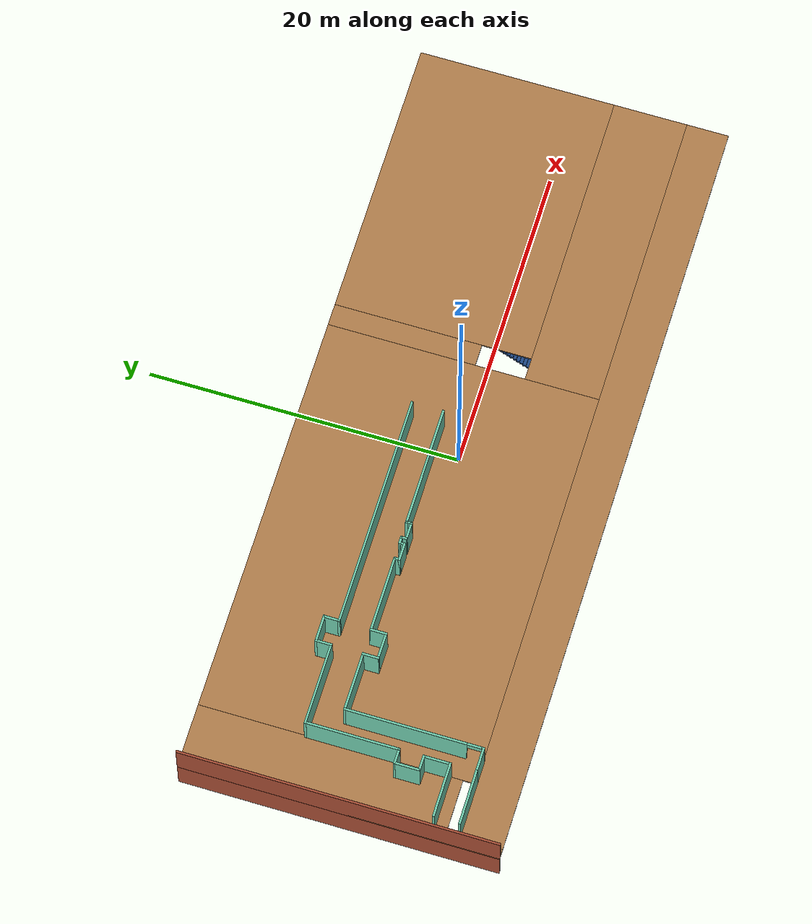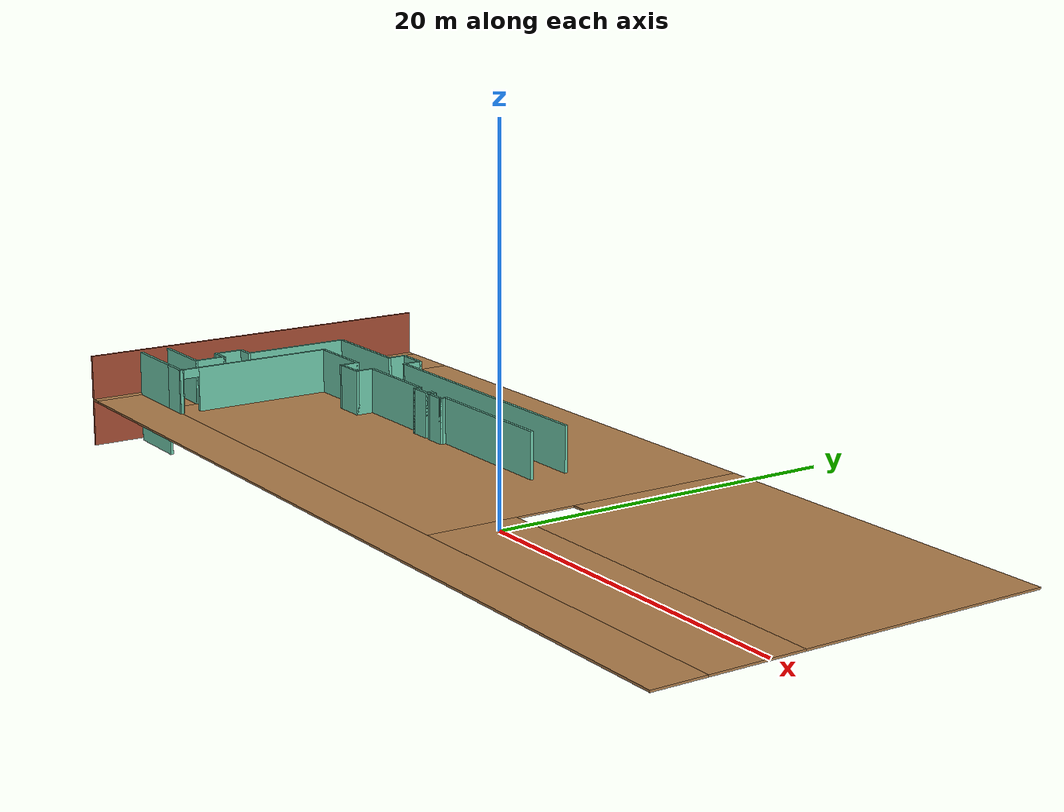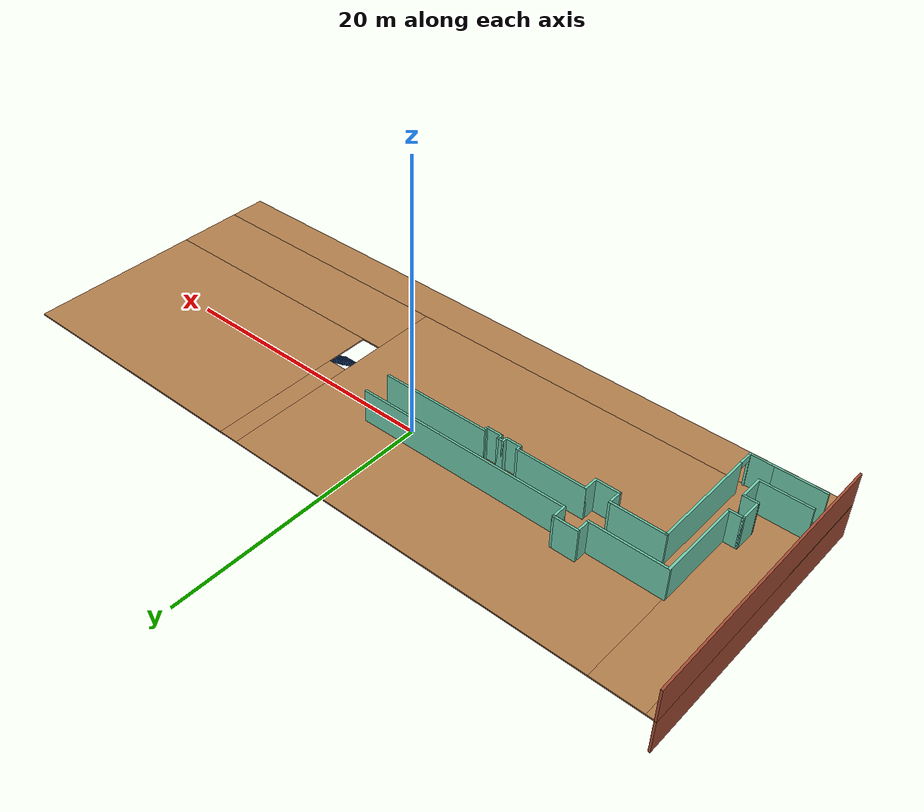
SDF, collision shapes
<sdf version="1.7">
 <model name="Version_precise_map_gazebo">
  <link name="Floor_1">
   <pose>0 0 2.5 0 -0 0</pose>
   <visual name="Floor_1_Visual_0">
    <pose>-24.7594 0 0.05 0 -0 0</pose>
    <geometry><box><size>0.631175 20.15 0.1</size></box></geometry>
    <material>
     <script><uri>file://media/materials/scripts/gazebo.material</uri><name>Gazebo/Wood</name></script>
     <ambient>1 1 1 1</ambient>
    </material>
    <meta><layer>1</layer></meta>
   </visual>
   <collision name="Floor_1_Collision_0">
    <geometry><box><size>0.631175 20.15 0.1</size></box></geometry>
    <pose>-24.7594 0 0.05 0 -0 0</pose>
   </collision>
   <visual name="Floor_1_Visual_1">
    <pose>0.315588 -8.71984 0.05 0 -0 0</pose>
    <geometry><box><size>49.5188 2.71032 0.1</size></box></geometry>
    <material>
     <script><uri>file://media/materials/scripts/gazebo.material</uri><name>Gazebo/Wood</name></script>
     <ambient>1 1 1 1</ambient>
    </material>
    <meta><layer>1</layer></meta>
   </visual>
   <collision name="Floor_1_Collision_1">
    <geometry><box><size>49.5188 2.71032 0.1</size></box></geometry>
    <pose>0.315588 -8.71984 0.05 0 -0 0</pose>
   </collision>
   <visual name="Floor_1_Visual_2">
    <pose>-6.8976 1.35516 0.05 0 -0 0</pose>
    <geometry><box><size>28.0924 17.4397 0.1</size></box></geometry>
    <material>
     <script><uri>file://media/materials/scripts/gazebo.material</uri><name>Gazebo/Wood</name></script>
     <ambient>1 1 1 1</ambient>
    </material>
    <meta><layer>1</layer></meta>
   </visual>
   <collision name="Floor_1_Collision_2">
    <geometry><box><size>26.2924 17.4397 0.1</size></box></geometry>
    <pose>-7.7976 1.35516 0.05 0 -0 0</pose>
   </collision>
   <visual name="Floor_1_Visual_3">
    <pose>16.1118 -4.98908 0.05 0 -0 0</pose>
    <geometry><box><size>17.9264 4.7512 0.1</size></box></geometry>
    <material>
     <script><uri>file://media/materials/scripts/gazebo.material</uri><name>Gazebo/Wood</name></script>
     <ambient>1 1 1 1</ambient>
    </material>
    <meta><layer>1</layer></meta>
   </visual>
   <collision name="Floor_1_Collision_3">
    <geometry><box><size>19.7264 4.7512 0.1</size></box></geometry>
    <pose>15.2118 -4.98908 0.05 0 -0 0</pose>
   </collision>
   <visual name="Floor_1_Visual_4">
    <pose>-22.6938 1.76016 0.05 0 -0 0</pose>
    <geometry><box><size>3.5 16.6297 0.1</size></box></geometry>
    <material>
     <script><uri>file://media/materials/scripts/gazebo.material</uri><name>Gazebo/Wood</name></script>
     <ambient>1 1 1 1</ambient>
    </material>
    <meta><layer>1</layer></meta>
   </visual>
   <collision name="Floor_1_Collision_4">
    <geometry><box><size>3.5 16.6297 0.1</size></box></geometry>
    <pose>-22.6938 1.76016 0.05 0 -0 0</pose>
   </collision>
   <visual name="Floor_1_Visual_5">
    <pose>16.8238 3.73076 0.05 0 -0 0</pose>
    <geometry><box><size>16.5025 12.6885 0.1</size></box></geometry>
    <material>
     <script><uri>file://media/materials/scripts/gazebo.material</uri><name>Gazebo/Wood</name></script>
     <ambient>1 1 1 1</ambient>
    </material>
    <meta><layer>1</layer></meta>
   </visual>
   <collision name="Floor_1_Collision_5">
    <geometry><box><size>18.3025 12.6885 0.1</size></box></geometry>
    <pose>15.9238 3.73076 0.05 0 -0 0</pose>
   </collision>
   <visual name="Floor_1_Visual_6">
    <pose>7.86056 5.3225 0.05 0 -0 0</pose>
    <geometry><box><size>1.42389 9.505 0.1</size></box></geometry>
    <material>
     <script><uri>file://media/materials/scripts/gazebo.material</uri><name>Gazebo/Wood</name></script>
     <ambient>1 1 1 1</ambient>
    </material>
    <meta><layer>1</layer></meta>
   </visual>
   <collision name="Floor_1_Collision_6">
    <geometry><box><size>1.42389 9.505 0.1</size></box></geometry>
    <pose>6.06056 5.3225 0.05 0 -0 0</pose>
   </collision>
  </link>
  <link name="Stairs_0">
   <visual name="Stairs_0_Visual_0">
    <pose>7.86056 -2.50736 0.083333 0 -0 -3.14159</pose>
    <geometry><box><size>1.42389 0.212232 0.166667</size></box></geometry>
    <material>
     <script><uri>file://media/materials/scripts/gazebo.material</uri><name>Gazebo/Grey</name></script>
     <ambient>0.12549 0.290196 0.529412 1</ambient>
    </material>
    <meta><layer>0</layer></meta>
   </visual>
   <collision name="Stairs_0_Collision_0">
    <geometry><box><size>1.42389 0.212232 0.166667</size></box></geometry>
    <pose>7.86056 -2.50736 0.083333 0 -0 -3.14159</pose>
   </collision>
   <visual name="Stairs_0_Visual_1">
    <pose>7.86056 -2.29513 0.25 0 -0 -3.14159</pose>
    <geometry><box><size>1.42389 0.212232 0.166667</size></box></geometry>
    <material>
     <script><uri>file://media/materials/scripts/gazebo.material</uri><name>Gazebo/Grey</name></script>
     <ambient>0.12549 0.290196 0.529412 1</ambient>
    </material>
    <meta><layer>0</layer></meta>
   </visual>
   <collision name="Stairs_0_Collision_1">
    <geometry><box><size>1.42389 0.212232 0.166667</size></box></geometry>
    <pose>7.86056 -2.29513 0.25 0 -0 -3.14159</pose>
   </collision>
   <visual name="Stairs_0_Visual_2">
    <pose>7.86056 -2.0829 0.416667 0 -0 -3.14159</pose>
    <geometry><box><size>1.42389 0.212232 0.166667</size></box></geometry>
    <material>
     <script><uri>file://media/materials/scripts/gazebo.material</uri><name>Gazebo/Grey</name></script>
     <ambient>0.12549 0.290196 0.529412 1</ambient>
    </material>
    <meta><layer>0</layer></meta>
   </visual>
   <collision name="Stairs_0_Collision_2">
    <geometry><box><size>1.42389 0.212232 0.166667</size></box></geometry>
    <pose>7.86056 -2.0829 0.416667 0 -0 -3.14159</pose>
   </collision>
   <visual name="Stairs_0_Visual_3">
    <pose>7.86056 -1.87067 0.583333 0 -0 -3.14159</pose>
    <geometry><box><size>1.42389 0.212232 0.166667</size></box></geometry>
    <material>
     <script><uri>file://media/materials/scripts/gazebo.material</uri><name>Gazebo/Grey</name></script>
     <ambient>0.12549 0.290196 0.529412 1</ambient>
    </material>
    <meta><layer>0</layer></meta>
   </visual>
   <collision name="Stairs_0_Collision_3">
    <geometry><box><size>1.42389 0.212232 0.166667</size></box></geometry>
    <pose>7.86056 -1.87067 0.583333 0 -0 -3.14159</pose>
   </collision>
   <visual name="Stairs_0_Visual_4">
    <pose>7.86056 -1.65844 0.75 0 -0 -3.14159</pose>
    <geometry><box><size>1.42389 0.212232 0.166667</size></box></geometry>
    <material>
     <script><uri>file://media/materials/scripts/gazebo.material</uri><name>Gazebo/Grey</name></script>
     <ambient>0.12549 0.290196 0.529412 1</ambient>
    </material>
    <meta><layer>0</layer></meta>
   </visual>
   <collision name="Stairs_0_Collision_4">
    <geometry><box><size>1.42389 0.212232 0.166667</size></box></geometry>
    <pose>7.86056 -1.65844 0.75 0 -0 -3.14159</pose>
   </collision>
   <visual name="Stairs_0_Visual_5">
    <pose>7.86056 -1.4462 0.916667 0 -0 -3.14159</pose>
    <geometry><box><size>1.42389 0.212232 0.166667</size></box></geometry>
    <material>
     <script><uri>file://media/materials/scripts/gazebo.material</uri><name>Gazebo/Grey</name></script>
     <ambient>0.12549 0.290196 0.529412 1</ambient>
    </material>
    <meta><layer>0</layer></meta>
   </visual>
   <collision name="Stairs_0_Collision_5">
    <geometry><box><size>1.42389 0.212232 0.166667</size></box></geometry>
    <pose>7.86056 -1.4462 0.916667 0 -0 -3.14159</pose>
   </collision>
   <visual name="Stairs_0_Visual_6">
    <pose>7.86056 -1.23397 1.08333 0 -0 -3.14159</pose>
    <geometry><box><size>1.42389 0.212232 0.166667</size></box></geometry>
    <material>
     <script><uri>file://media/materials/scripts/gazebo.material</uri><name>Gazebo/Grey</name></script>
     <ambient>0.12549 0.290196 0.529412 1</ambient>
    </material>
    <meta><layer>0</layer></meta>
   </visual>
   <collision name="Stairs_0_Collision_6">
    <geometry><box><size>1.42389 0.212232 0.166667</size></box></geometry>
    <pose>7.86056 -1.23397 1.08333 0 -0 -3.14159</pose>
   </collision>
   <visual name="Stairs_0_Visual_7">
    <pose>7.86056 -1.02174 1.25 0 -0 -3.14159</pose>
    <geometry><box><size>1.42389 0.212232 0.166667</size></box></geometry>
    <material>
     <script><uri>file://media/materials/scripts/gazebo.material</uri><name>Gazebo/Grey</name></script>
     <ambient>0.12549 0.290196 0.529412 1</ambient>
    </material>
    <meta><layer>0</layer></meta>
   </visual>
   <collision name="Stairs_0_Collision_7">
    <geometry><box><size>1.42389 0.212232 0.166667</size></box></geometry>
    <pose>7.86056 -1.02174 1.25 0 -0 -3.14159</pose>
   </collision>
   <visual name="Stairs_0_Visual_8">
    <pose>7.86056 -0.809507 1.41667 0 -0 -3.14159</pose>
    <geometry><box><size>1.42389 0.212232 0.166667</size></box></geometry>
    <material>
     <script><uri>file://media/materials/scripts/gazebo.material</uri><name>Gazebo/Grey</name></script>
     <ambient>0.12549 0.290196 0.529412 1</ambient>
    </material>
    <meta><layer>0</layer></meta>
   </visual>
   <collision name="Stairs_0_Collision_8">
    <geometry><box><size>1.42389 0.212232 0.166667</size></box></geometry>
    <pose>7.86056 -0.809507 1.41667 0 -0 -3.14159</pose>
   </collision>
   <visual name="Stairs_0_Visual_9">
    <pose>7.86056 -0.597275 1.58333 0 -0 -3.14159</pose>
    <geometry><box><size>1.42389 0.212232 0.166667</size></box></geometry>
    <material>
     <script><uri>file://media/materials/scripts/gazebo.material</uri><name>Gazebo/Grey</name></script>
     <ambient>0.12549 0.290196 0.529412 1</ambient>
    </material>
    <meta><layer>0</layer></meta>
   </visual>
   <collision name="Stairs_0_Collision_9">
    <geometry><box><size>1.42389 0.212232 0.166667</size></box></geometry>
    <pose>7.86056 -0.597275 1.58333 0 -0 -3.14159</pose>
   </collision>
   <visual name="Stairs_0_Visual_10">
    <pose>7.86056 -0.385043 1.75 0 -0 -3.14159</pose>
    <geometry><box><size>1.42389 0.212232 0.166667</size></box></geometry>
    <material>
     <script><uri>file://media/materials/scripts/gazebo.material</uri><name>Gazebo/Grey</name></script>
     <ambient>0.12549 0.290196 0.529412 1</ambient>
    </material>
    <meta><layer>0</layer></meta>
   </visual>
   <collision name="Stairs_0_Collision_10">
    <geometry><box><size>1.42389 0.212232 0.166667</size></box></geometry>
    <pose>7.86056 -0.385043 1.75 0 -0 -3.14159</pose>
   </collision>
   <visual name="Stairs_0_Visual_11">
    <pose>7.86056 -0.172812 1.91667 0 -0 -3.14159</pose>
    <geometry><box><size>1.42389 0.212232 0.166667</size></box></geometry>
    <material>
     <script><uri>file://media/materials/scripts/gazebo.material</uri><name>Gazebo/Grey</name></script>
     <ambient>0.12549 0.290196 0.529412 1</ambient>
    </material>
    <meta><layer>0</layer></meta>
   </visual>
   <collision name="Stairs_0_Collision_11">
    <geometry><box><size>1.42389 0.212232 0.166667</size></box></geometry>
    <pose>7.86056 -0.172812 1.91667 0 -0 -3.14159</pose>
   </collision>
   <visual name="Stairs_0_Visual_12">
    <pose>7.86056 0.03942 2.08333 0 -0 -3.14159</pose>
    <geometry><box><size>1.42389 0.212232 0.166667</size></box></geometry>
    <material>
     <script><uri>file://media/materials/scripts/gazebo.material</uri><name>Gazebo/Grey</name></script>
     <ambient>0.12549 0.290196 0.529412 1</ambient>
    </material>
    <meta><layer>0</layer></meta>
   </visual>
   <collision name="Stairs_0_Collision_12">
    <geometry><box><size>1.42389 0.212232 0.166667</size></box></geometry>
    <pose>7.86056 0.03942 2.08333 0 -0 -3.14159</pose>
   </collision>
   <visual name="Stairs_0_Visual_13">
    <pose>7.86056 0.251652 2.25 0 -0 -3.14159</pose>
    <geometry><box><size>1.42389 0.212232 0.166667</size></box></geometry>
    <material>
     <script><uri>file://media/materials/scripts/gazebo.material</uri><name>Gazebo/Grey</name></script>
     <ambient>0.12549 0.290196 0.529412 1</ambient>
    </material>
    <meta><layer>0</layer></meta>
   </visual>
   <collision name="Stairs_0_Collision_13">
    <geometry><box><size>1.42389 0.212232 0.166667</size></box></geometry>
    <pose>7.86056 0.251652 2.25 0 -0 -3.14159</pose>
   </collision>
   <visual name="Stairs_0_Visual_14">
    <pose>7.86056 0.463884 2.41667 0 -0 -3.14159</pose>
    <geometry><box><size>1.42389 0.212232 0.166667</size></box></geometry>
    <material>
     <script><uri>file://media/materials/scripts/gazebo.material</uri><name>Gazebo/Grey</name></script>
     <ambient>0.12549 0.290196 0.529412 1</ambient>
    </material>
    <meta><layer>0</layer></meta>
   </visual>
   <collision name="Stairs_0_Collision_14">
    <geometry><box><size>1.42389 0.212232 0.166667</size></box></geometry>
    <pose>7.86056 0.463884 2.41667 0 -0 -3.14159</pose>
   </collision>
  </link>
  <link name="Wall_100">
   <collision name="Wall_100_Collision">
    <geometry><box><size>0.45 0.15 2.5</size></box></geometry>
    <pose>0 0 1.25 0 -0 0</pose>
   </collision>
   <visual name="Wall_100_Visual">
    <pose>0 0 1.25 0 -0 0</pose>
    <geometry><box><size>0.45 0.15 2.5</size></box></geometry>
    <material>
     <script><uri>file://media/materials/scripts/gazebo.material</uri><name>Gazebo/Grey</name></script>
     <ambient>0.435294 0.796078 0.67451 1</ambient>
    </material>
    <meta><layer>1</layer></meta>
    <transparency>0.5</transparency>
   </visual>
   <pose>-8.27 1.125 2.5 0 -0 1.5708</pose>
  </link>
  <link name="Wall_102">
   <collision name="Wall_102_Collision">
    <geometry><box><size>1.2 0.15 2.5</size></box></geometry>
    <pose>0 0 1.25 0 -0 0</pose>
   </collision>
   <visual name="Wall_102_Visual">
    <pose>0 0 1.25 0 -0 0</pose>
    <geometry><box><size>1.2 0.15 2.5</size></box></geometry>
    <material>
     <script><uri>file://media/materials/scripts/gazebo.material</uri><name>Gazebo/Grey</name></script>
     <ambient>0.435294 0.796078 0.67451 1</ambient>
    </material>
    <meta><layer>1</layer></meta>
    <transparency>0.5</transparency>
   </visual>
   <pose>-8.795 0.975 2.5 0 -0 3.14159</pose>
  </link>
  <link name="Wall_106">
   <collision name="Wall_106_Collision">
    <geometry><box><size>0.45 0.15 2.5</size></box></geometry>
    <pose>0 0 1.25 0 -0 0</pose>
   </collision>
   <visual name="Wall_106_Visual">
    <pose>0 0 1.25 0 -0 0</pose>
    <geometry><box><size>0.45 0.15 2.5</size></box></geometry>
    <material>
     <script><uri>file://media/materials/scripts/gazebo.material</uri><name>Gazebo/Grey</name></script>
     <ambient>0.435294 0.796078 0.67451 1</ambient>
    </material>
    <meta><layer>1</layer></meta>
    <transparency>0.5</transparency>
   </visual>
   <pose>-9.32 1.125 2.5 0 -0 1.5708</pose>
  </link>
  <link name="Wall_108">
   <collision name="Wall_108_Collision">
    <geometry><box><size>5 0.15 2.5</size></box></geometry>
    <pose>0 0 1.25 0 -0 0</pose>
   </collision>
   <visual name="Wall_108_Visual">
    <pose>0 0 1.25 0 -0 0</pose>
    <geometry><box><size>5 0.15 2.5</size></box></geometry>
    <material>
     <script><uri>file://media/materials/scripts/gazebo.material</uri><name>Gazebo/Grey</name></script>
     <ambient>0.435294 0.796078 0.67451 1</ambient>
    </material>
    <meta><layer>1</layer></meta>
    <transparency>0.5</transparency>
   </visual>
   <pose>-11.745 1.275 2.5 0 -0 3.14159</pose>
  </link>
  <link name="Wall_110">
   <collision name="Wall_110_Collision">
    <geometry><box><size>1.1 0.15 2.5</size></box></geometry>
    <pose>0 0 1.25 0 -0 0</pose>
   </collision>
   <visual name="Wall_110_Visual">
    <pose>0 0 1.25 0 -0 0</pose>
    <geometry><box><size>1.1 0.15 2.5</size></box></geometry>
    <material>
     <script><uri>file://media/materials/scripts/gazebo.material</uri><name>Gazebo/Grey</name></script>
     <ambient>0.435294 0.796078 0.67451 1</ambient>
    </material>
    <meta><layer>1</layer></meta>
    <transparency>0.5</transparency>
   </visual>
   <pose>-14.17 0.8 2.5 0 -0 -1.5708</pose>
  </link>
  <link name="Wall_112">
   <collision name="Wall_112_Collision">
    <geometry><box><size>1.78 0.15 2.5</size></box></geometry>
    <pose>0 0 1.25 0 -0 0</pose>
   </collision>
   <visual name="Wall_112_Visual">
    <pose>0 0 1.25 0 -0 0</pose>
    <geometry><box><size>1.78 0.15 2.5</size></box></geometry>
    <material>
     <script><uri>file://media/materials/scripts/gazebo.material</uri><name>Gazebo/Grey</name></script>
     <ambient>0.435294 0.796078 0.67451 1</ambient>
    </material>
    <meta><layer>1</layer></meta>
    <transparency>0.5</transparency>
   </visual>
   <pose>-14.985 0.325 2.5 0 -0 3.14159</pose>
  </link>
  <link name="Wall_114">
   <collision name="Wall_114_Collision">
    <geometry><box><size>1.1 0.15 2.5</size></box></geometry>
    <pose>0 0 1.25 0 -0 0</pose>
   </collision>
   <visual name="Wall_114_Visual">
    <pose>0 0 1.25 0 -0 0</pose>
    <geometry><box><size>1.1 0.15 2.5</size></box></geometry>
    <material>
     <script><uri>file://media/materials/scripts/gazebo.material</uri><name>Gazebo/Grey</name></script>
     <ambient>0.435294 0.796078 0.67451 1</ambient>
    </material>
    <meta><layer>1</layer></meta>
    <transparency>0.5</transparency>
   </visual>
   <pose>-15.8 0.8 2.5 0 -0 1.5708</pose>
  </link>
  <link name="Wall_116">
   <collision name="Wall_116_Collision">
    <geometry><box><size>3.85 0.15 2.5</size></box></geometry>
    <pose>0 0 1.25 0 -0 0</pose>
   </collision>
   <visual name="Wall_116_Visual">
    <pose>0 0 1.25 0 -0 0</pose>
    <geometry><box><size>3.85 0.15 2.5</size></box></geometry>
    <material>
     <script><uri>file://media/materials/scripts/gazebo.material</uri><name>Gazebo/Grey</name></script>
     <ambient>0.435294 0.796078 0.67451 1</ambient>
    </material>
    <meta><layer>1</layer></meta>
    <transparency>0.5</transparency>
   </visual>
   <pose>-17.65 1.275 2.5 0 -0 3.14159</pose>
  </link>
  <link name="Wall_120">
   <collision name="Wall_120_Collision">
    <geometry><box><size>15.12 0.15 2.5</size></box></geometry>
    <pose>0 0 1.25 0 -0 0</pose>
   </collision>
   <visual name="Wall_120_Visual">
    <pose>0 0 1.25 0 -0 0</pose>
    <geometry><box><size>15.12 0.15 2.5</size></box></geometry>
    <material>
     <script><uri>file://media/materials/scripts/gazebo.material</uri><name>Gazebo/Grey</name></script>
     <ambient>0.435294 0.796078 0.67451 1</ambient>
    </material>
    <meta><layer>1</layer></meta>
    <transparency>0.5</transparency>
   </visual>
   <pose>-6.685 3.275 2.5 0 -0 3.14159</pose>
  </link>
  <link name="Wall_122">
   <collision name="Wall_122_Collision">
    <geometry><box><size>1.1 0.15 2.5</size></box></geometry>
    <pose>0 0 1.25 0 -0 0</pose>
   </collision>
   <visual name="Wall_122_Visual">
    <pose>0 0 1.25 0 -0 0</pose>
    <geometry><box><size>1.1 0.15 2.5</size></box></geometry>
    <material>
     <script><uri>file://media/materials/scripts/gazebo.material</uri><name>Gazebo/Grey</name></script>
     <ambient>0.435294 0.796078 0.67451 1</ambient>
    </material>
    <meta><layer>1</layer></meta>
    <transparency>0.5</transparency>
   </visual>
   <pose>-14.17 3.75 2.5 0 -0 1.5708</pose>
  </link>
  <link name="Wall_124">
   <collision name="Wall_124_Collision">
    <geometry><box><size>1.78 0.15 2.5</size></box></geometry>
    <pose>0 0 1.25 0 -0 0</pose>
   </collision>
   <visual name="Wall_124_Visual">
    <pose>0 0 1.25 0 -0 0</pose>
    <geometry><box><size>1.78 0.15 2.5</size></box></geometry>
    <material>
     <script><uri>file://media/materials/scripts/gazebo.material</uri><name>Gazebo/Grey</name></script>
     <ambient>0.435294 0.796078 0.67451 1</ambient>
    </material>
    <meta><layer>1</layer></meta>
    <transparency>0.5</transparency>
   </visual>
   <pose>-14.985 4.225 2.5 0 -0 3.14159</pose>
  </link>
  <link name="Wall_126">
   <collision name="Wall_126_Collision">
    <geometry><box><size>1.1 0.15 2.5</size></box></geometry>
    <pose>0 0 1.25 0 -0 0</pose>
   </collision>
   <visual name="Wall_126_Visual">
    <pose>0 0 1.25 0 -0 0</pose>
    <geometry><box><size>1.1 0.15 2.5</size></box></geometry>
    <material>
     <script><uri>file://media/materials/scripts/gazebo.material</uri><name>Gazebo/Grey</name></script>
     <ambient>0.435294 0.796078 0.67451 1</ambient>
    </material>
    <meta><layer>1</layer></meta>
    <transparency>0.5</transparency>
   </visual>
   <pose>-15.8 3.75 2.5 0 -0 -1.5708</pose>
  </link>
  <link name="Wall_128">
   <collision name="Wall_128_Collision">
    <geometry><box><size>5.35 0.15 2.5</size></box></geometry>
    <pose>0 0 1.25 0 -0 0</pose>
   </collision>
   <visual name="Wall_128_Visual">
    <pose>0 0 1.25 0 -0 0</pose>
    <geometry><box><size>5.35 0.15 2.5</size></box></geometry>
    <material>
     <script><uri>file://media/materials/scripts/gazebo.material</uri><name>Gazebo/Grey</name></script>
     <ambient>0.435294 0.796078 0.67451 1</ambient>
    </material>
    <meta><layer>1</layer></meta>
    <transparency>0.5</transparency>
   </visual>
   <pose>-18.4 3.275 2.5 0 -0 3.14159</pose>
  </link>
  <link name="Wall_132">
   <collision name="Wall_132_Collision">
    <geometry><box><size>6 0.15 2.5</size></box></geometry>
    <pose>0 0 1.25 0 -0 0</pose>
   </collision>
   <visual name="Wall_132_Visual">
    <pose>0 0 1.25 0 -0 0</pose>
    <geometry><box><size>6 0.15 2.5</size></box></geometry>
    <material>
     <script><uri>file://media/materials/scripts/gazebo.material</uri><name>Gazebo/Grey</name></script>
     <ambient>0.435294 0.796078 0.67451 1</ambient>
    </material>
    <meta><layer>1</layer></meta>
    <transparency>0.5</transparency>
   </visual>
   <pose>-21 0.35 2.5 0 -0 -1.5708</pose>
  </link>
  <link name="Wall_134">
   <pose>-19.5 -3.05 2.5 0 -0 -1.5708</pose>
   <visual name="Wall_134_Visual_0">
    <pose>-0.55 0 1.25 0 -0 0</pose>
    <geometry><box><size>7.7 0.15 2.5</size></box></geometry>
    <material>
     <script><uri>file://media/materials/scripts/gazebo.material</uri><name>Gazebo/Grey</name></script>
     <ambient>0.435294 0.796078 0.67451 1</ambient>
    </material>
    <meta><layer>1</layer></meta>
    <transparency>0.5</transparency>
   </visual>
   <collision name="Wall_134_Collision_0">
    <geometry><box><size>7.7 0.15 2.5</size></box></geometry>
    <pose>-0.55 0 1.25 0 -0 0</pose>
   </collision>
   <visual name="Wall_134_Visual_1">
    <pose>4.3 0 1.25 0 -0 0</pose>
    <geometry><box><size>0.2 0.15 2.5</size></box></geometry>
    <material>
     <script><uri>file://media/materials/scripts/gazebo.material</uri><name>Gazebo/Grey</name></script>
     <ambient>0.435294 0.796078 0.67451 1</ambient>
    </material>
    <meta><layer>1</layer></meta>
    <transparency>0.5</transparency>
   </visual>
   <collision name="Wall_134_Collision_1">
    <geometry><box><size>0.2 0.15 2.5</size></box></geometry>
    <pose>4.3 0 1.25 0 -0 0</pose>
   </collision>
   <visual name="Wall_134_Visual_2">
    <pose>3.75 0 2.25 0 -0 0</pose>
    <geometry><box><size>0.9 0.15 0.5</size></box></geometry>
    <material>
     <script><uri>file://media/materials/scripts/gazebo.material</uri><name>Gazebo/Grey</name></script>
     <ambient>0.435294 0.796078 0.67451 1</ambient>
    </material>
    <meta><layer>1</layer></meta>
    <transparency>0.5</transparency>
   </visual>
   <collision name="Wall_134_Collision_2">
    <geometry><box><size>0.9 0.15 0.5</size></box></geometry>
    <pose>3.75 0 2.25 0 -0 0</pose>
   </collision>
  </link>
  <link name="Wall_136">
   <collision name="Wall_136_Collision">
    <geometry><box><size>1.05 0.15 2.5</size></box></geometry>
    <pose>0 0 1.25 0 -0 0</pose>
   </collision>
   <visual name="Wall_136_Visual">
    <pose>0 0 1.25 0 -0 0</pose>
    <geometry><box><size>1.05 0.15 2.5</size></box></geometry>
    <material>
     <script><uri>file://media/materials/scripts/gazebo.material</uri><name>Gazebo/Grey</name></script>
     <ambient>0.435294 0.796078 0.67451 1</ambient>
    </material>
    <meta><layer>1</layer></meta>
    <transparency>0.5</transparency>
   </visual>
   <pose>-21.45 -2.575 2.5 0 -0 3.14159</pose>
  </link>
  <link name="Wall_138">
   <collision name="Wall_138_Collision">
    <geometry><box><size>1.68 0.15 2.5</size></box></geometry>
    <pose>0 0 1.25 0 -0 0</pose>
   </collision>
   <visual name="Wall_138_Visual">
    <pose>0 0 1.25 0 -0 0</pose>
    <geometry><box><size>1.68 0.15 2.5</size></box></geometry>
    <material>
     <script><uri>file://media/materials/scripts/gazebo.material</uri><name>Gazebo/Grey</name></script>
     <ambient>0.435294 0.796078 0.67451 1</ambient>
    </material>
    <meta><layer>1</layer></meta>
    <transparency>0.5</transparency>
   </visual>
   <pose>-21.9 -3.34 2.5 0 -0 -1.5708</pose>
  </link>
  <link name="Wall_140">
   <collision name="Wall_140_Collision">
    <geometry><box><size>1.05 0.15 2.5</size></box></geometry>
    <pose>0 0 1.25 0 -0 0</pose>
   </collision>
   <visual name="Wall_140_Visual">
    <pose>0 0 1.25 0 -0 0</pose>
    <geometry><box><size>1.05 0.15 2.5</size></box></geometry>
    <material>
     <script><uri>file://media/materials/scripts/gazebo.material</uri><name>Gazebo/Grey</name></script>
     <ambient>0.435294 0.796078 0.67451 1</ambient>
    </material>
    <meta><layer>1</layer></meta>
    <transparency>0.5</transparency>
   </visual>
   <pose>-21.45 -4.105 2.5 0 -0 0</pose>
  </link>
  <link name="Wall_142">
   <collision name="Wall_142_Collision">
    <geometry><box><size>1.8 0.15 2.5</size></box></geometry>
    <pose>0 0 1.25 0 -0 0</pose>
   </collision>
   <visual name="Wall_142_Visual">
    <pose>0 0 1.25 0 -0 0</pose>
    <geometry><box><size>1.8 0.15 2.5</size></box></geometry>
    <material>
     <script><uri>file://media/materials/scripts/gazebo.material</uri><name>Gazebo/Grey</name></script>
     <ambient>0.435294 0.796078 0.67451 1</ambient>
    </material>
    <meta><layer>1</layer></meta>
    <transparency>0.5</transparency>
   </visual>
   <pose>-21 -4.93 2.5 0 -0 -1.5708</pose>
  </link>
  <link name="Wall_144">
   <collision name="Wall_144_Collision">
    <geometry><box><size>1.65 0.15 2.5</size></box></geometry>
    <pose>0 0 1.25 0 -0 0</pose>
   </collision>
   <visual name="Wall_144_Visual">
    <pose>0 0 1.25 0 -0 0</pose>
    <geometry><box><size>1.65 0.15 2.5</size></box></geometry>
    <material>
     <script><uri>file://media/materials/scripts/gazebo.material</uri><name>Gazebo/Grey</name></script>
     <ambient>0.435294 0.796078 0.67451 1</ambient>
    </material>
    <meta><layer>1</layer></meta>
    <transparency>0.5</transparency>
   </visual>
   <pose>-20.25 -7.375 2.5 0 -0 0</pose>
  </link>
  <link name="Wall_156">
   <collision name="Wall_156_Collision">
    <geometry><box><size>3.55 0.15 2.5</size></box></geometry>
    <pose>0 0 1.25 0 -0 0</pose>
   </collision>
   <visual name="Wall_156_Visual">
    <pose>0 0 1.25 0 -0 0</pose>
    <geometry><box><size>3.55 0.15 2.5</size></box></geometry>
    <material>
     <script><uri>file://media/materials/scripts/gazebo.material</uri><name>Gazebo/Grey</name></script>
     <ambient>0.435294 0.796078 0.67451 1</ambient>
    </material>
    <meta><layer>1</layer></meta>
    <transparency>0.5</transparency>
   </visual>
   <pose>-22.7 -5.755 2.5 0 -0 3.14159</pose>
  </link>
  <link name="Wall_158">
   <collision name="Wall_158_Collision">
    <geometry><box><size>3.55 0.15 2.5</size></box></geometry>
    <pose>0 0 1.25 0 -0 0</pose>
   </collision>
   <visual name="Wall_158_Visual">
    <pose>0 0 1.25 0 -0 0</pose>
    <geometry><box><size>3.55 0.15 2.5</size></box></geometry>
    <material>
     <script><uri>file://media/materials/scripts/gazebo.material</uri><name>Gazebo/Grey</name></script>
     <ambient>0.435294 0.796078 0.67451 1</ambient>
    </material>
    <meta><layer>1</layer></meta>
    <transparency>0.5</transparency>
   </visual>
   <pose>-22.7 -7.375 2.5 0 -0 3.14159</pose>
  </link>
  <link name="Wall_160">
   <collision name="Wall_160_Collision">
    <geometry><box><size>3.55 0.15 2.5</size></box></geometry>
    <pose>0 0 1.25 0 -0 0</pose>
   </collision>
   <visual name="Wall_160_Visual">
    <pose>0 0 1.25 0 -0 0</pose>
    <geometry><box><size>3.55 0.15 2.5</size></box></geometry>
    <material>
     <script><uri>file://media/materials/scripts/gazebo.material</uri><name>Gazebo/Grey</name></script>
     <ambient>0.435294 0.796078 0.67451 1</ambient>
    </material>
    <meta><layer>0</layer></meta>
    <transparency>0.5</transparency>
   </visual>
   <pose>-22.7 -7.375 0 0 -0 3.14159</pose>
  </link>
  <link name="Wall_162">
   <collision name="Wall_162_Collision">
    <geometry><box><size>3.55 0.15 2.5</size></box></geometry>
    <pose>0 0 1.25 0 -0 0</pose>
   </collision>
   <visual name="Wall_162_Visual">
    <pose>0 0 1.25 0 -0 0</pose>
    <geometry><box><size>3.55 0.15 2.5</size></box></geometry>
    <material>
     <script><uri>file://media/materials/scripts/gazebo.material</uri><name>Gazebo/Grey</name></script>
     <ambient>0.435294 0.796078 0.67451 1</ambient>
    </material>
    <meta><layer>0</layer></meta>
    <transparency>0.5</transparency>
   </visual>
   <pose>-22.7 -5.755 0 0 -0 3.14159</pose>
  </link>
  <link name="Wall_4">
   <collision name="Wall_4_Collision">
    <geometry><box><size>20.15 0.15 2.5</size></box></geometry>
    <pose>0 0 1.25 0 -0 0</pose>
   </collision>
   <visual name="Wall_4_Visual">
    <pose>0 0 1.25 0 -0 0</pose>
    <geometry><box><size>20.15 0.15 2.5</size></box></geometry>
    <material>
     <script><uri>file://media/materials/scripts/gazebo.material</uri><name>Gazebo/Bricks</name></script>
     <ambient>1 1 1 1</ambient>
    </material>
    <meta><layer>0</layer></meta>
   </visual>
   <pose>-25 0 0 0 -0 1.5708</pose>
  </link>
  <link name="Wall_54">
   <collision name="Wall_54_Collision">
    <geometry><box><size>20.15 0.15 2.5</size></box></geometry>
    <pose>0 0 1.25 0 -0 0</pose>
   </collision>
   <visual name="Wall_54_Visual">
    <pose>0 0 1.25 0 -0 0</pose>
    <geometry><box><size>20.15 0.15 2.5</size></box></geometry>
    <material>
     <script><uri>file://media/materials/scripts/gazebo.material</uri><name>Gazebo/Bricks</name></script>
     <ambient>1 1 1 1</ambient>
    </material>
    <meta><layer>1</layer></meta>
   </visual>
   <pose>-25 0 2.5 0 -0 1.5708</pose>
  </link>
  <link name="Wall_90">
   <collision name="Wall_90_Collision">
    <geometry><box><size>7.8 0.15 2.5</size></box></geometry>
    <pose>0 0 1.25 0 -0 0</pose>
   </collision>
   <visual name="Wall_90_Visual">
    <pose>0 0 1.25 0 -0 0</pose>
    <geometry><box><size>7.8 0.15 2.5</size></box></geometry>
    <material>
     <script><uri>file://media/materials/scripts/gazebo.material</uri><name>Gazebo/Grey</name></script>
     <ambient>0.435294 0.796078 0.67451 1</ambient>
    </material>
    <meta><layer>1</layer></meta>
    <transparency>0.5</transparency>
   </visual>
   <pose>-3.025 1.275 2.5 0 -0 3.14159</pose>
  </link>
  <link name="Wall_92">
   <collision name="Wall_92_Collision">
    <geometry><box><size>0.45 0.15 2.5</size></box></geometry>
    <pose>0 0 1.25 0 -0 0</pose>
   </collision>
   <visual name="Wall_92_Visual">
    <pose>0 0 1.25 0 -0 0</pose>
    <geometry><box><size>0.45 0.15 2.5</size></box></geometry>
    <material>
     <script><uri>file://media/materials/scripts/gazebo.material</uri><name>Gazebo/Grey</name></script>
     <ambient>0.435294 0.796078 0.67451 1</ambient>
    </material>
    <meta><layer>1</layer></meta>
    <transparency>0.5</transparency>
   </visual>
   <pose>-6.85 1.125 2.5 0 -0 1.5708</pose>
  </link>
  <link name="Wall_94">
   <collision name="Wall_94_Collision">
    <geometry><box><size>1.2 0.15 2.5</size></box></geometry>
    <pose>0 0 1.25 0 -0 0</pose>
   </collision>
   <visual name="Wall_94_Visual">
    <pose>0 0 1.25 0 -0 0</pose>
    <geometry><box><size>1.2 0.15 2.5</size></box></geometry>
    <material>
     <script><uri>file://media/materials/scripts/gazebo.material</uri><name>Gazebo/Grey</name></script>
     <ambient>0.435294 0.796078 0.67451 1</ambient>
    </material>
    <meta><layer>1</layer></meta>
    <transparency>0.5</transparency>
   </visual>
   <pose>-7.375 0.975 2.5 0 -0 3.14159</pose>
  </link>
  <link name="Wall_96">
   <collision name="Wall_96_Collision">
    <geometry><box><size>0.45 0.15 2.5</size></box></geometry>
    <pose>0 0 1.25 0 -0 0</pose>
   </collision>
   <visual name="Wall_96_Visual">
    <pose>0 0 1.25 0 -0 0</pose>
    <geometry><box><size>0.45 0.15 2.5</size></box></geometry>
    <material>
     <script><uri>file://media/materials/scripts/gazebo.material</uri><name>Gazebo/Grey</name></script>
     <ambient>0.435294 0.796078 0.67451 1</ambient>
    </material>
    <meta><layer>1</layer></meta>
    <transparency>0.5</transparency>
   </visual>
   <pose>-7.9 1.125 2.5 0 -0 1.5708</pose>
  </link>
  <link name="Wall_98">
   <collision name="Wall_98_Collision">
    <geometry><box><size>0.52 0.15 2.5</size></box></geometry>
    <pose>0 0 1.25 0 -0 0</pose>
   </collision>
   <visual name="Wall_98_Visual">
    <pose>0 0 1.25 0 -0 0</pose>
    <geometry><box><size>0.52 0.15 2.5</size></box></geometry>
    <material>
     <script><uri>file://media/materials/scripts/gazebo.material</uri><name>Gazebo/Grey</name></script>
     <ambient>0.435294 0.796078 0.67451 1</ambient>
    </material>
    <meta><layer>1</layer></meta>
    <transparency>0.5</transparency>
   </visual>
   <pose>-8.085 1.275 2.5 0 -0 3.14159</pose>
  </link>
  <static>1</static>
 </model>
</sdf>
